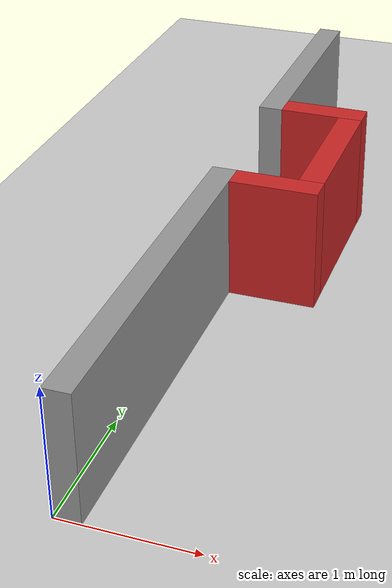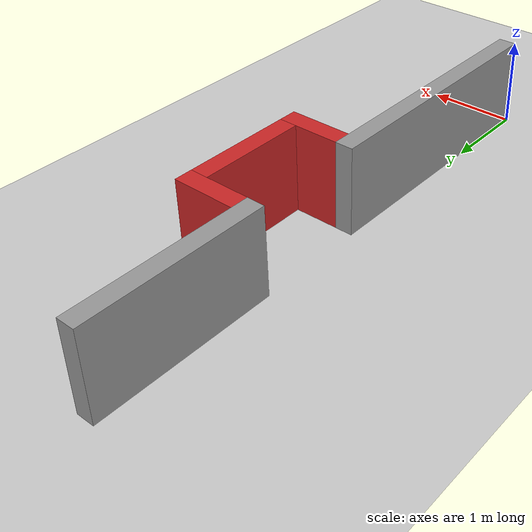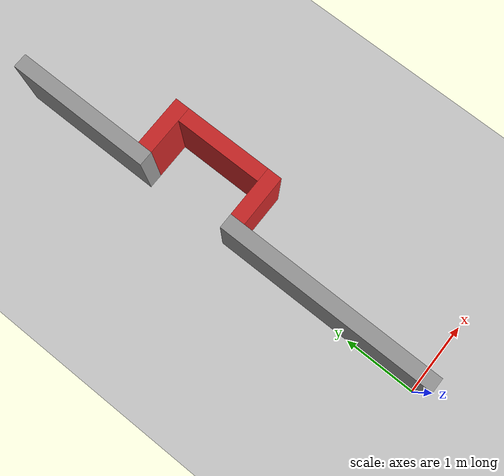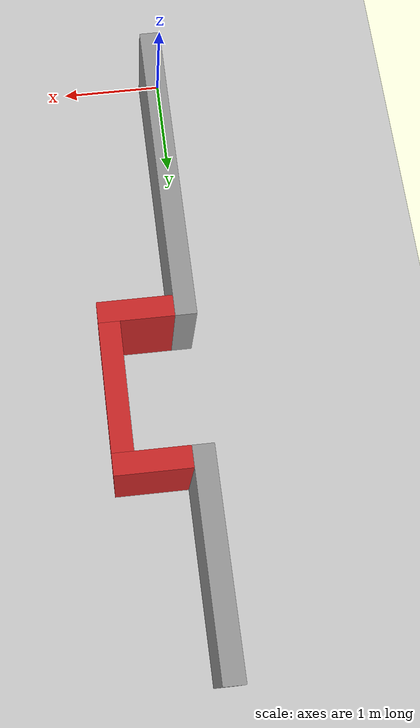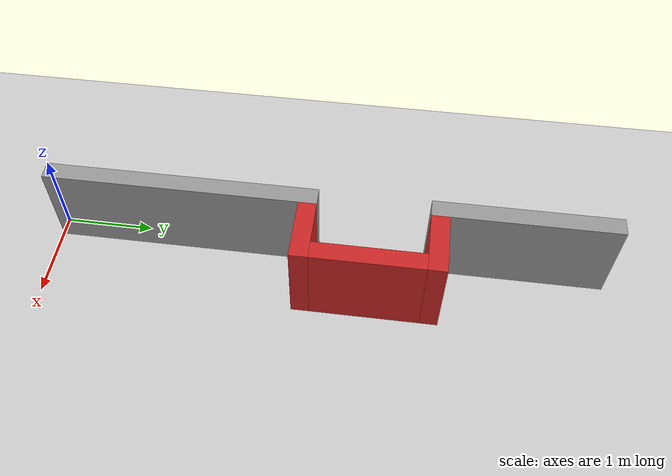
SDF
<!-- Entspricht dem einfachsten Fall, mit dem wir anfangen zu testen -->
<!-- dies baut eine Welt, bestehend aus einer langen Wand, welche durch eine einzelne Parklücke unterbrochen wird -->
<!-- die kann man dann in der Länge anpassen um versch. Szenarien zu testen -->

<?xml version="1.0" ?>
<sdf version="1.6">

  <world name="parallel_parking_world_simple">
    <!-- Include necessary plugins -->
    <include>
      <uri>model://sun</uri>
    </include>
    <include>
      <uri>model://ground_plane</uri>
    </include>

      <model name='my_ground_plane'>
      <static>1</static>
      <link name='link'>
        <collision name='collision'>
          <geometry>
            <plane>
              <normal>0 0 1</normal>
              <size>100 100</size>
            </plane>
          </geometry>
          <surface>
            <friction>
              <ode>
                <mu>100</mu>
                <mu2>50</mu2>
              </ode>
              <torsional>
                <ode/>
              </torsional>
            </friction>
            <contact>
              <ode/>
            </contact>
            <bounce/>
          </surface>
          <max_contacts>10</max_contacts>
        </collision>
        <visual name='visual'>
          <cast_shadows>0</cast_shadows>
          <geometry>
            <plane>
              <normal>0 0 1</normal>
              <size>28 28</size>
            </plane>
          </geometry>
          <material>
            <script>
              <uri>model://my_ground_plane/materials/scripts</uri>
              <uri>model://my_ground_plane/materials/textures</uri>
              <name>MyGroundPlane/Image</name>
            </script>
          </material>
        </visual>
        <self_collide>0</self_collide>
        <kinematic>0</kinematic>
        <gravity>1</gravity>
        <enable_wind>0</enable_wind>
      </link>
    </model>

    <!-- Wall with parking cutout -->
    <model name="wall_with_parking_cutout">
      <static>true</static>
      <!-- First wall segment -->
      <link name="wall_segment_1">
        <pose>0.1 1.5 0.5 0 0 0</pose>
        <collision name="collision">
          <geometry>
            <box>
              <size>0.2 3 1</size>
            </box>
          </geometry>
        </collision>
        <visual name="visual">
          <geometry>
            <box>
              <size>0.2 3 1</size>
            </box>
          </geometry>
          <material>
            <script>
              <uri>file://media/materials/scripts/gazebo.material</uri>
              <name>Gazebo/Grey</name>
            </script>
          </material>
        </visual>
      </link>
      <!-- Second wall segment -->
      <link name="wall_segment_2">
        <pose>0.1 5.2 0.5 0 0 0</pose>
        <collision name="collision">
          <geometry>
            <box>
              <size>0.2 2 1</size> <!-- Length 2m, Width 0.2m, Height 1m -->
            </box>
          </geometry>
        </collision>
        <visual name="visual">
          <geometry>
            <box>
              <size>0.2 2 1</size>
            </box>
          </geometry>
          <material>
            <script>
              <uri>file://media/materials/scripts/gazebo.material</uri>
              <name>Gazebo/Grey</name>
            </script>
          </material>
        </visual>
      </link>
      <!-- Parking space cutout (visual only, no collision for entry) -->
      <link name="pspace_1">
        <pose>0.55 2.9 0.5 0 0 0</pose>
        <collision name="collision">
          <geometry>
            <box>
              <size>0.7 0.2 1</size>
            </box>
          </geometry>
        </collision>
        <visual name="visual">
          <geometry>
            <box>
              <size>0.7 0.2 1</size>
            </box>
          </geometry>
          <material>
            <script>
              <uri>file://media/materials/scripts/gazebo.material</uri>
              <name>Gazebo/Red</name>
            </script>
          </material>
        </visual>
      </link>

      <link name="pspace_2">
        <pose>0.7999999999999999 3.6 0.5 0 0 0</pose>
        <collision name="collision">
          <geometry>
            <box>
              <size>0.2 1.2 1</size>
            </box>
          </geometry>
        </collision>
        <visual name="visual">
          <geometry>
            <box>
              <size>0.2 1.2 1</size>
            </box>
          </geometry>
          <material>
            <script>
              <uri>file://media/materials/scripts/gazebo.material</uri>
              <name>Gazebo/Red</name>
            </script>
          </material>
        </visual>
      </link>

      <link name="pspace_3">
        <pose>0.55 4.3 0.5 0 0 0</pose>
        <collision name="collision">
          <geometry>
            <box>
              <size>0.7 0.2 1</size>
            </box>
          </geometry>
        </collision>
        <visual name="visual">
          <geometry>
            <box>
              <size>0.7 0.2 1</size>
            </box>
          </geometry>
          <material>
            <script>
              <uri>file://media/materials/scripts/gazebo.material</uri>
              <name>Gazebo/Red</name>
            </script>
          </material>
        </visual>
      </link>
    </model>

    <!-- Physics and other world settings -->
    <physics name="default_physics" default="true" type="ode">
      <gravity>0 0 -9.8</gravity>
    </physics>
  </world>
</sdf>
